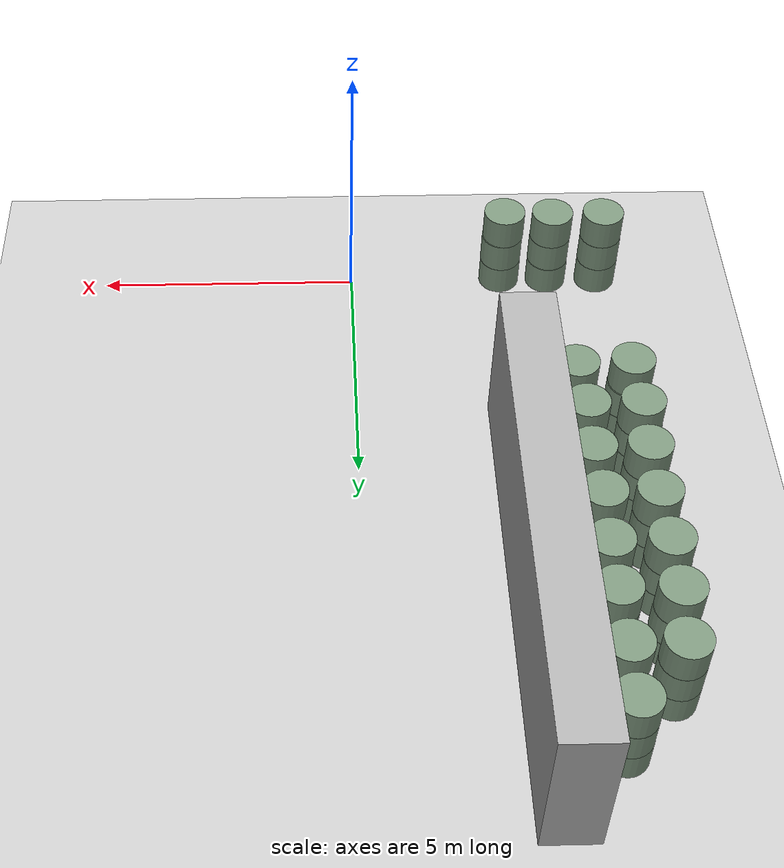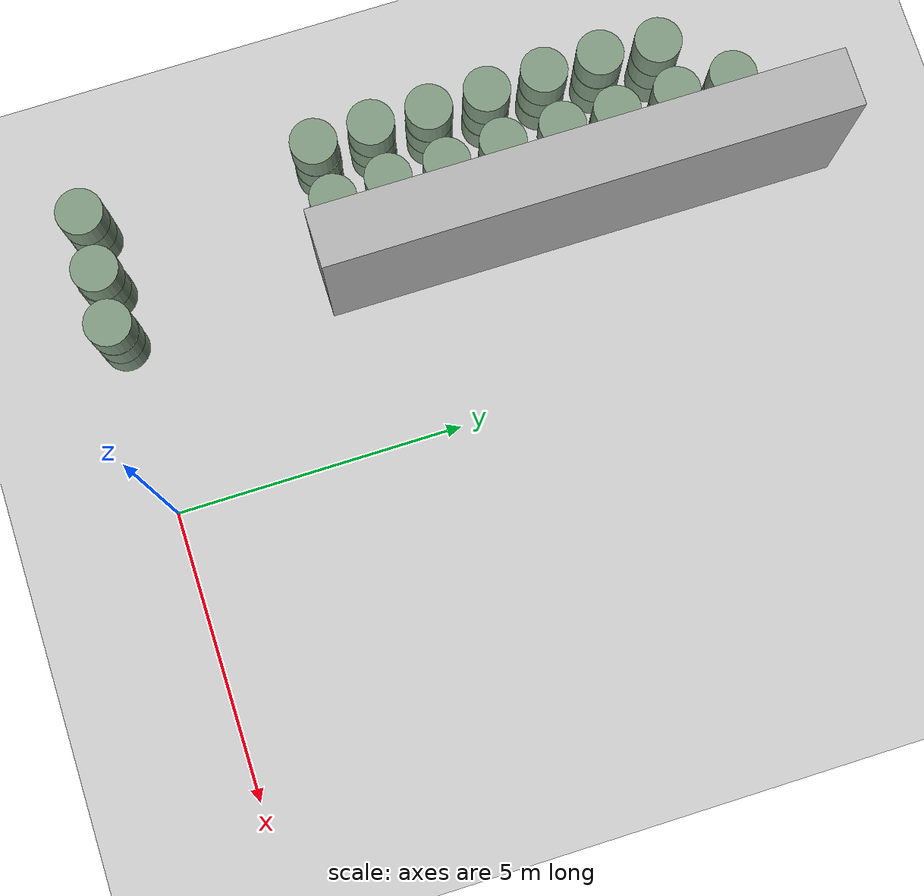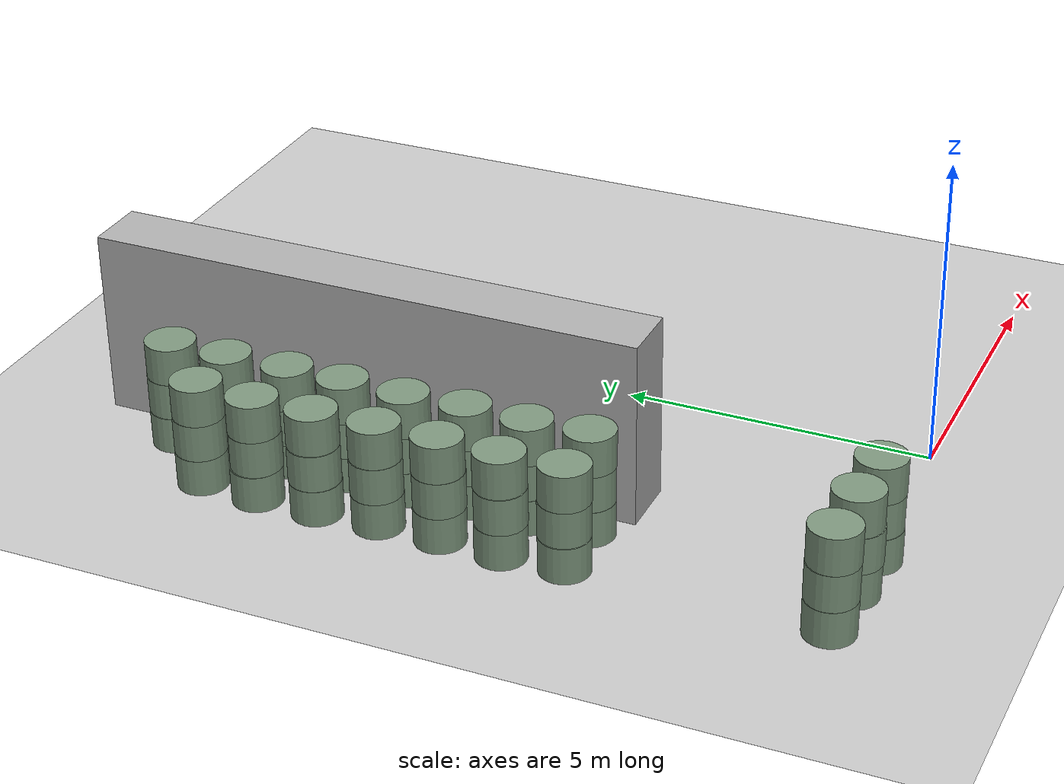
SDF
<sdf version="1.6">
 <world name="default">
  <include><uri>model://ground_plane</uri></include>
  <model name="wall_3">
   <pose>-3.0 8.0 1.5 0 -0 0</pose>
   <static>True</static>
   <link name="link">
    <inertial>
     <mass>100</mass>
     <inertia>
      <ixx>0.166667</ixx>
      <ixy>0</ixy>
      <ixz>0</ixz>
      <iyy>0.166667</iyy>
      <iyz>0</iyz>
      <izz>0.166667</izz>
     </inertia>
    </inertial>
    <collision name="collision"><geometry><box><size>1.0 9.0 3.0</size></box></geometry></collision>
    <visual name="visual">
     <geometry><box><size>1.0 9.0 3.0</size></box></geometry>
     <material><ambient>0.7 0.7 0.7 1</ambient><diffuse>0.7 0.7 0.7 1</diffuse></material>
    </visual>
   </link>
  </model>
  <model name="unit_cylinder_65">
   <pose>-4.96735528969 0.0021140604384 0.3 0 -0 0</pose>
   <static>True</static>
   <link name="link">
    <inertial>
     <mass>100</mass>
     <inertia><ixx>0.145833</ixx><ixy>0</ixy><ixz>0</ixz><iyy>0.145833</iyy><iyz>0</iyz><izz>0.125</izz></inertia>
    </inertial>
    <collision name="collision">
     <geometry><cylinder><radius>0.4</radius><length>0.6</length></cylinder></geometry>
     <max_contacts>100</max_contacts>
    </collision>
    <visual name="visual">
     <geometry><cylinder><radius>0.4</radius><length>0.6</length></cylinder></geometry>
     <material><ambient>0.5 0.6 0.5 1</ambient><diffuse>0.5 0.6 0.5 1</diffuse></material>
    </visual>
   </link>
  </model>
  <model name="unit_cylinder_66">
   <pose>-4.96388893308 0.00316919549557 0.9 0 -0 0</pose>
   <static>True</static>
   <link name="link">
    <inertial>
     <mass>100</mass>
     <inertia><ixx>0.145833</ixx><ixy>0</ixy><ixz>0</ixz><iyy>0.145833</iyy><iyz>0</iyz><izz>0.125</izz></inertia>
    </inertial>
    <collision name="collision">
     <geometry><cylinder><radius>0.4</radius><length>0.6</length></cylinder></geometry>
     <max_contacts>100</max_contacts>
    </collision>
    <visual name="visual">
     <geometry><cylinder><radius>0.4</radius><length>0.6</length></cylinder></geometry>
     <material><ambient>0.5 0.6 0.5 1</ambient><diffuse>0.5 0.6 0.5 1</diffuse></material>
    </visual>
   </link>
  </model>
  <model name="unit_cylinder_67">
   <pose>-4.95941871918 -0.00279619304965 1.5 0 -0 0</pose>
   <static>True</static>
   <link name="link">
    <inertial>
     <mass>100</mass>
     <inertia><ixx>0.145833</ixx><ixy>0</ixy><ixz>0</ixz><iyy>0.145833</iyy><iyz>0</iyz><izz>0.125</izz></inertia>
    </inertial>
    <collision name="collision">
     <geometry><cylinder><radius>0.4</radius><length>0.6</length></cylinder></geometry>
     <max_contacts>100</max_contacts>
    </collision>
    <visual name="visual">
     <geometry><cylinder><radius>0.4</radius><length>0.6</length></cylinder></geometry>
     <material><ambient>0.5 0.6 0.5 1</ambient><diffuse>0.5 0.6 0.5 1</diffuse></material>
    </visual>
   </link>
  </model>
  <model name="unit_cylinder_68">
   <pose>-4.97665239249 4.00115435384 0.3 0 -0 0</pose>
   <static>True</static>
   <link name="link">
    <inertial>
     <mass>100</mass>
     <inertia><ixx>0.145833</ixx><ixy>0</ixy><ixz>0</ixz><iyy>0.145833</iyy><iyz>0</iyz><izz>0.125</izz></inertia>
    </inertial>
    <collision name="collision">
     <geometry><cylinder><radius>0.4</radius><length>0.6</length></cylinder></geometry>
     <max_contacts>100</max_contacts>
    </collision>
    <visual name="visual">
     <geometry><cylinder><radius>0.4</radius><length>0.6</length></cylinder></geometry>
     <material><ambient>0.5 0.6 0.5 1</ambient><diffuse>0.5 0.6 0.5 1</diffuse></material>
    </visual>
   </link>
  </model>
  <model name="unit_cylinder_69">
   <pose>-4.96123217518 4.01271607768 0.9 0 -0 0</pose>
   <static>True</static>
   <link name="link">
    <inertial>
     <mass>100</mass>
     <inertia><ixx>0.145833</ixx><ixy>0</ixy><ixz>0</ixz><iyy>0.145833</iyy><iyz>0</iyz><izz>0.125</izz></inertia>
    </inertial>
    <collision name="collision">
     <geometry><cylinder><radius>0.4</radius><length>0.6</length></cylinder></geometry>
     <max_contacts>100</max_contacts>
    </collision>
    <visual name="visual">
     <geometry><cylinder><radius>0.4</radius><length>0.6</length></cylinder></geometry>
     <material><ambient>0.5 0.6 0.5 1</ambient><diffuse>0.5 0.6 0.5 1</diffuse></material>
    </visual>
   </link>
  </model>
  <model name="unit_cylinder_70">
   <pose>-4.97257461751 3.99964357237 1.5 0 -0 0</pose>
   <static>True</static>
   <link name="link">
    <inertial>
     <mass>100</mass>
     <inertia><ixx>0.145833</ixx><ixy>0</ixy><ixz>0</ixz><iyy>0.145833</iyy><iyz>0</iyz><izz>0.125</izz></inertia>
    </inertial>
    <collision name="collision">
     <geometry><cylinder><radius>0.4</radius><length>0.6</length></cylinder></geometry>
     <max_contacts>100</max_contacts>
    </collision>
    <visual name="visual">
     <geometry><cylinder><radius>0.4</radius><length>0.6</length></cylinder></geometry>
     <material><ambient>0.5 0.6 0.5 1</ambient><diffuse>0.5 0.6 0.5 1</diffuse></material>
    </visual>
   </link>
  </model>
  <model name="unit_cylinder_71">
   <pose>-5.01684145792 4.99076180541 0.3 0 -0 0</pose>
   <static>True</static>
   <link name="link">
    <inertial>
     <mass>100</mass>
     <inertia><ixx>0.145833</ixx><ixy>0</ixy><ixz>0</ixz><iyy>0.145833</iyy><iyz>0</iyz><izz>0.125</izz></inertia>
    </inertial>
    <collision name="collision">
     <geometry><cylinder><radius>0.4</radius><length>0.6</length></cylinder></geometry>
     <max_contacts>100</max_contacts>
    </collision>
    <visual name="visual">
     <geometry><cylinder><radius>0.4</radius><length>0.6</length></cylinder></geometry>
     <material><ambient>0.5 0.6 0.5 1</ambient><diffuse>0.5 0.6 0.5 1</diffuse></material>
    </visual>
   </link>
  </model>
  <model name="unit_cylinder_72">
   <pose>-5.01776492797 4.98397670151 0.9 0 -0 0</pose>
   <static>True</static>
   <link name="link">
    <inertial>
     <mass>100</mass>
     <inertia><ixx>0.145833</ixx><ixy>0</ixy><ixz>0</ixz><iyy>0.145833</iyy><iyz>0</iyz><izz>0.125</izz></inertia>
    </inertial>
    <collision name="collision">
     <geometry><cylinder><radius>0.4</radius><length>0.6</length></cylinder></geometry>
     <max_contacts>100</max_contacts>
    </collision>
    <visual name="visual">
     <geometry><cylinder><radius>0.4</radius><length>0.6</length></cylinder></geometry>
     <material><ambient>0.5 0.6 0.5 1</ambient><diffuse>0.5 0.6 0.5 1</diffuse></material>
    </visual>
   </link>
  </model>
  <model name="unit_cylinder_73">
   <pose>-5.00644599023 4.99819325167 1.5 0 -0 0</pose>
   <static>True</static>
   <link name="link">
    <inertial>
     <mass>100</mass>
     <inertia><ixx>0.145833</ixx><ixy>0</ixy><ixz>0</ixz><iyy>0.145833</iyy><iyz>0</iyz><izz>0.125</izz></inertia>
    </inertial>
    <collision name="collision">
     <geometry><cylinder><radius>0.4</radius><length>0.6</length></cylinder></geometry>
     <max_contacts>100</max_contacts>
    </collision>
    <visual name="visual">
     <geometry><cylinder><radius>0.4</radius><length>0.6</length></cylinder></geometry>
     <material><ambient>0.5 0.6 0.5 1</ambient><diffuse>0.5 0.6 0.5 1</diffuse></material>
    </visual>
   </link>
  </model>
  <model name="unit_cylinder_74">
   <pose>-4.97988111141 5.99110220012 0.3 0 -0 0</pose>
   <static>True</static>
   <link name="link">
    <inertial>
     <mass>100</mass>
     <inertia><ixx>0.145833</ixx><ixy>0</ixy><ixz>0</ixz><iyy>0.145833</iyy><iyz>0</iyz><izz>0.125</izz></inertia>
    </inertial>
    <collision name="collision">
     <geometry><cylinder><radius>0.4</radius><length>0.6</length></cylinder></geometry>
     <max_contacts>100</max_contacts>
    </collision>
    <visual name="visual">
     <geometry><cylinder><radius>0.4</radius><length>0.6</length></cylinder></geometry>
     <material><ambient>0.5 0.6 0.5 1</ambient><diffuse>0.5 0.6 0.5 1</diffuse></material>
    </visual>
   </link>
  </model>
  <model name="unit_cylinder_75">
   <pose>-4.97790646693 5.98630708977 0.9 0 -0 0</pose>
   <static>True</static>
   <link name="link">
    <inertial>
     <mass>100</mass>
     <inertia><ixx>0.145833</ixx><ixy>0</ixy><ixz>0</ixz><iyy>0.145833</iyy><iyz>0</iyz><izz>0.125</izz></inertia>
    </inertial>
    <collision name="collision">
     <geometry><cylinder><radius>0.4</radius><length>0.6</length></cylinder></geometry>
     <max_contacts>100</max_contacts>
    </collision>
    <visual name="visual">
     <geometry><cylinder><radius>0.4</radius><length>0.6</length></cylinder></geometry>
     <material><ambient>0.5 0.6 0.5 1</ambient><diffuse>0.5 0.6 0.5 1</diffuse></material>
    </visual>
   </link>
  </model>
  <model name="unit_cylinder_76">
   <pose>-4.97747650032 5.99498811339 1.5 0 -0 0</pose>
   <static>True</static>
   <link name="link">
    <inertial>
     <mass>100</mass>
     <inertia><ixx>0.145833</ixx><ixy>0</ixy><ixz>0</ixz><iyy>0.145833</iyy><iyz>0</iyz><izz>0.125</izz></inertia>
    </inertial>
    <collision name="collision">
     <geometry><cylinder><radius>0.4</radius><length>0.6</length></cylinder></geometry>
     <max_contacts>100</max_contacts>
    </collision>
    <visual name="visual">
     <geometry><cylinder><radius>0.4</radius><length>0.6</length></cylinder></geometry>
     <material><ambient>0.5 0.6 0.5 1</ambient><diffuse>0.5 0.6 0.5 1</diffuse></material>
    </visual>
   </link>
  </model>
  <model name="unit_cylinder_77">
   <pose>-4.99007872937 6.99916679576 0.3 0 -0 0</pose>
   <static>True</static>
   <link name="link">
    <inertial>
     <mass>100</mass>
     <inertia><ixx>0.145833</ixx><ixy>0</ixy><ixz>0</ixz><iyy>0.145833</iyy><iyz>0</iyz><izz>0.125</izz></inertia>
    </inertial>
    <collision name="collision">
     <geometry><cylinder><radius>0.4</radius><length>0.6</length></cylinder></geometry>
     <max_contacts>100</max_contacts>
    </collision>
    <visual name="visual">
     <geometry><cylinder><radius>0.4</radius><length>0.6</length></cylinder></geometry>
     <material><ambient>0.5 0.6 0.5 1</ambient><diffuse>0.5 0.6 0.5 1</diffuse></material>
    </visual>
   </link>
  </model>
  <model name="unit_cylinder_78">
   <pose>-4.99468358126 7.00328295893 0.9 0 -0 0</pose>
   <static>True</static>
   <link name="link">
    <inertial>
     <mass>100</mass>
     <inertia><ixx>0.145833</ixx><ixy>0</ixy><ixz>0</ixz><iyy>0.145833</iyy><iyz>0</iyz><izz>0.125</izz></inertia>
    </inertial>
    <collision name="collision">
     <geometry><cylinder><radius>0.4</radius><length>0.6</length></cylinder></geometry>
     <max_contacts>100</max_contacts>
    </collision>
    <visual name="visual">
     <geometry><cylinder><radius>0.4</radius><length>0.6</length></cylinder></geometry>
     <material><ambient>0.5 0.6 0.5 1</ambient><diffuse>0.5 0.6 0.5 1</diffuse></material>
    </visual>
   </link>
  </model>
  <model name="unit_cylinder_79">
   <pose>-4.98581485361 7.00862531745 1.5 0 -0 0</pose>
   <static>True</static>
   <link name="link">
    <inertial>
     <mass>100</mass>
     <inertia><ixx>0.145833</ixx><ixy>0</ixy><ixz>0</ixz><iyy>0.145833</iyy><iyz>0</iyz><izz>0.125</izz></inertia>
    </inertial>
    <collision name="collision">
     <geometry><cylinder><radius>0.4</radius><length>0.6</length></cylinder></geometry>
     <max_contacts>100</max_contacts>
    </collision>
    <visual name="visual">
     <geometry><cylinder><radius>0.4</radius><length>0.6</length></cylinder></geometry>
     <material><ambient>0.5 0.6 0.5 1</ambient><diffuse>0.5 0.6 0.5 1</diffuse></material>
    </visual>
   </link>
  </model>
  <model name="unit_cylinder_80">
   <pose>-5.03895302583 8.00003435356 0.3 0 -0 0</pose>
   <static>True</static>
   <link name="link">
    <inertial>
     <mass>100</mass>
     <inertia><ixx>0.145833</ixx><ixy>0</ixy><ixz>0</ixz><iyy>0.145833</iyy><iyz>0</iyz><izz>0.125</izz></inertia>
    </inertial>
    <collision name="collision">
     <geometry><cylinder><radius>0.4</radius><length>0.6</length></cylinder></geometry>
     <max_contacts>100</max_contacts>
    </collision>
    <visual name="visual">
     <geometry><cylinder><radius>0.4</radius><length>0.6</length></cylinder></geometry>
     <material><ambient>0.5 0.6 0.5 1</ambient><diffuse>0.5 0.6 0.5 1</diffuse></material>
    </visual>
   </link>
  </model>
  <model name="unit_cylinder_81">
   <pose>-5.03508112863 8.01048629167 0.9 0 -0 0</pose>
   <static>True</static>
   <link name="link">
    <inertial>
     <mass>100</mass>
     <inertia><ixx>0.145833</ixx><ixy>0</ixy><ixz>0</ixz><iyy>0.145833</iyy><iyz>0</iyz><izz>0.125</izz></inertia>
    </inertial>
    <collision name="collision">
     <geometry><cylinder><radius>0.4</radius><length>0.6</length></cylinder></geometry>
     <max_contacts>100</max_contacts>
    </collision>
    <visual name="visual">
     <geometry><cylinder><radius>0.4</radius><length>0.6</length></cylinder></geometry>
     <material><ambient>0.5 0.6 0.5 1</ambient><diffuse>0.5 0.6 0.5 1</diffuse></material>
    </visual>
   </link>
  </model>
  <model name="unit_cylinder_82">
   <pose>-5.02244157855 8.01714980772 1.5 0 -0 0</pose>
   <static>True</static>
   <link name="link">
    <inertial>
     <mass>100</mass>
     <inertia><ixx>0.145833</ixx><ixy>0</ixy><ixz>0</ixz><iyy>0.145833</iyy><iyz>0</iyz><izz>0.125</izz></inertia>
    </inertial>
    <collision name="collision">
     <geometry><cylinder><radius>0.4</radius><length>0.6</length></cylinder></geometry>
     <max_contacts>100</max_contacts>
    </collision>
    <visual name="visual">
     <geometry><cylinder><radius>0.4</radius><length>0.6</length></cylinder></geometry>
     <material><ambient>0.5 0.6 0.5 1</ambient><diffuse>0.5 0.6 0.5 1</diffuse></material>
    </visual>
   </link>
  </model>
  <model name="unit_cylinder_83">
   <pose>-5.04258567234 9.00417437093 0.3 0 -0 0</pose>
   <static>True</static>
   <link name="link">
    <inertial>
     <mass>100</mass>
     <inertia><ixx>0.145833</ixx><ixy>0</ixy><ixz>0</ixz><iyy>0.145833</iyy><iyz>0</iyz><izz>0.125</izz></inertia>
    </inertial>
    <collision name="collision">
     <geometry><cylinder><radius>0.4</radius><length>0.6</length></cylinder></geometry>
     <max_contacts>100</max_contacts>
    </collision>
    <visual name="visual">
     <geometry><cylinder><radius>0.4</radius><length>0.6</length></cylinder></geometry>
     <material><ambient>0.5 0.6 0.5 1</ambient><diffuse>0.5 0.6 0.5 1</diffuse></material>
    </visual>
   </link>
  </model>
  <model name="unit_cylinder_84">
   <pose>-5.02820156402 8.99670966676 0.9 0 -0 0</pose>
   <static>True</static>
   <link name="link">
    <inertial>
     <mass>100</mass>
     <inertia><ixx>0.145833</ixx><ixy>0</ixy><ixz>0</ixz><iyy>0.145833</iyy><iyz>0</iyz><izz>0.125</izz></inertia>
    </inertial>
    <collision name="collision">
     <geometry><cylinder><radius>0.4</radius><length>0.6</length></cylinder></geometry>
     <max_contacts>100</max_contacts>
    </collision>
    <visual name="visual">
     <geometry><cylinder><radius>0.4</radius><length>0.6</length></cylinder></geometry>
     <material><ambient>0.5 0.6 0.5 1</ambient><diffuse>0.5 0.6 0.5 1</diffuse></material>
    </visual>
   </link>
  </model>
  <model name="unit_cylinder_85">
   <pose>-5.03328325137 9.00127237318 1.5 0 -0 0</pose>
   <static>True</static>
   <link name="link">
    <inertial>
     <mass>100</mass>
     <inertia><ixx>0.145833</ixx><ixy>0</ixy><ixz>0</ixz><iyy>0.145833</iyy><iyz>0</iyz><izz>0.125</izz></inertia>
    </inertial>
    <collision name="collision">
     <geometry><cylinder><radius>0.4</radius><length>0.6</length></cylinder></geometry>
     <max_contacts>100</max_contacts>
    </collision>
    <visual name="visual">
     <geometry><cylinder><radius>0.4</radius><length>0.6</length></cylinder></geometry>
     <material><ambient>0.5 0.6 0.5 1</ambient><diffuse>0.5 0.6 0.5 1</diffuse></material>
    </visual>
   </link>
  </model>
  <model name="unit_cylinder_86">
   <pose>-4.95789149822 9.99998866019 0.3 0 -0 0</pose>
   <static>True</static>
   <link name="link">
    <inertial>
     <mass>100</mass>
     <inertia><ixx>0.145833</ixx><ixy>0</ixy><ixz>0</ixz><iyy>0.145833</iyy><iyz>0</iyz><izz>0.125</izz></inertia>
    </inertial>
    <collision name="collision">
     <geometry><cylinder><radius>0.4</radius><length>0.6</length></cylinder></geometry>
     <max_contacts>100</max_contacts>
    </collision>
    <visual name="visual">
     <geometry><cylinder><radius>0.4</radius><length>0.6</length></cylinder></geometry>
     <material><ambient>0.5 0.6 0.5 1</ambient><diffuse>0.5 0.6 0.5 1</diffuse></material>
    </visual>
   </link>
  </model>
  <model name="unit_cylinder_87">
   <pose>-4.95550819153 9.99922210261 0.9 0 -0 0</pose>
   <static>True</static>
   <link name="link">
    <inertial>
     <mass>100</mass>
     <inertia><ixx>0.145833</ixx><ixy>0</ixy><ixz>0</ixz><iyy>0.145833</iyy><iyz>0</iyz><izz>0.125</izz></inertia>
    </inertial>
    <collision name="collision">
     <geometry><cylinder><radius>0.4</radius><length>0.6</length></cylinder></geometry>
     <max_contacts>100</max_contacts>
    </collision>
    <visual name="visual">
     <geometry><cylinder><radius>0.4</radius><length>0.6</length></cylinder></geometry>
     <material><ambient>0.5 0.6 0.5 1</ambient><diffuse>0.5 0.6 0.5 1</diffuse></material>
    </visual>
   </link>
  </model>
  <model name="unit_cylinder_88">
   <pose>-4.9542023309 9.99643986957 1.5 0 -0 0</pose>
   <static>True</static>
   <link name="link">
    <inertial>
     <mass>100</mass>
     <inertia><ixx>0.145833</ixx><ixy>0</ixy><ixz>0</ixz><iyy>0.145833</iyy><iyz>0</iyz><izz>0.125</izz></inertia>
    </inertial>
    <collision name="collision">
     <geometry><cylinder><radius>0.4</radius><length>0.6</length></cylinder></geometry>
     <max_contacts>100</max_contacts>
    </collision>
    <visual name="visual">
     <geometry><cylinder><radius>0.4</radius><length>0.6</length></cylinder></geometry>
     <material><ambient>0.5 0.6 0.5 1</ambient><diffuse>0.5 0.6 0.5 1</diffuse></material>
    </visual>
   </link>
  </model>
  <model name="unit_cylinder_111">
   <pose>-3.95936437391 -0.0170742061133 0.3 0 -0 0</pose>
   <static>True</static>
   <link name="link">
    <inertial>
     <mass>100</mass>
     <inertia><ixx>0.145833</ixx><ixy>0</ixy><ixz>0</ixz><iyy>0.145833</iyy><iyz>0</iyz><izz>0.125</izz></inertia>
    </inertial>
    <collision name="collision">
     <geometry><cylinder><radius>0.4</radius><length>0.6</length></cylinder></geometry>
     <max_contacts>100</max_contacts>
    </collision>
    <visual name="visual">
     <geometry><cylinder><radius>0.4</radius><length>0.6</length></cylinder></geometry>
     <material><ambient>0.5 0.6 0.5 1</ambient><diffuse>0.5 0.6 0.5 1</diffuse></material>
    </visual>
   </link>
  </model>
  <model name="unit_cylinder_112">
   <pose>-3.9565617313 -0.0327676005354 0.9 0 -0 0</pose>
   <static>True</static>
   <link name="link">
    <inertial>
     <mass>100</mass>
     <inertia><ixx>0.145833</ixx><ixy>0</ixy><ixz>0</ixz><iyy>0.145833</iyy><iyz>0</iyz><izz>0.125</izz></inertia>
    </inertial>
    <collision name="collision">
     <geometry><cylinder><radius>0.4</radius><length>0.6</length></cylinder></geometry>
     <max_contacts>100</max_contacts>
    </collision>
    <visual name="visual">
     <geometry><cylinder><radius>0.4</radius><length>0.6</length></cylinder></geometry>
     <material><ambient>0.5 0.6 0.5 1</ambient><diffuse>0.5 0.6 0.5 1</diffuse></material>
    </visual>
   </link>
  </model>
  <model name="unit_cylinder_113">
   <pose>-3.95821135689 -0.0164057703828 1.5 0 -0 0</pose>
   <static>True</static>
   <link name="link">
    <inertial>
     <mass>100</mass>
     <inertia><ixx>0.145833</ixx><ixy>0</ixy><ixz>0</ixz><iyy>0.145833</iyy><iyz>0</iyz><izz>0.125</izz></inertia>
    </inertial>
    <collision name="collision">
     <geometry><cylinder><radius>0.4</radius><length>0.6</length></cylinder></geometry>
     <max_contacts>100</max_contacts>
    </collision>
    <visual name="visual">
     <geometry><cylinder><radius>0.4</radius><length>0.6</length></cylinder></geometry>
     <material><ambient>0.5 0.6 0.5 1</ambient><diffuse>0.5 0.6 0.5 1</diffuse></material>
    </visual>
   </link>
  </model>
  <model name="unit_cylinder_114">
   <pose>-3.96576906701 4.04295643976 0.3 0 -0 0</pose>
   <static>True</static>
   <link name="link">
    <inertial>
     <mass>100</mass>
     <inertia><ixx>0.145833</ixx><ixy>0</ixy><ixz>0</ixz><iyy>0.145833</iyy><iyz>0</iyz><izz>0.125</izz></inertia>
    </inertial>
    <collision name="collision">
     <geometry><cylinder><radius>0.4</radius><length>0.6</length></cylinder></geometry>
     <max_contacts>100</max_contacts>
    </collision>
    <visual name="visual">
     <geometry><cylinder><radius>0.4</radius><length>0.6</length></cylinder></geometry>
     <material><ambient>0.5 0.6 0.5 1</ambient><diffuse>0.5 0.6 0.5 1</diffuse></material>
    </visual>
   </link>
  </model>
  <model name="unit_cylinder_115">
   <pose>-3.95856047173 4.04661416271 0.9 0 -0 0</pose>
   <static>True</static>
   <link name="link">
    <inertial>
     <mass>100</mass>
     <inertia><ixx>0.145833</ixx><ixy>0</ixy><ixz>0</ixz><iyy>0.145833</iyy><iyz>0</iyz><izz>0.125</izz></inertia>
    </inertial>
    <collision name="collision">
     <geometry><cylinder><radius>0.4</radius><length>0.6</length></cylinder></geometry>
     <max_contacts>100</max_contacts>
    </collision>
    <visual name="visual">
     <geometry><cylinder><radius>0.4</radius><length>0.6</length></cylinder></geometry>
     <material><ambient>0.5 0.6 0.5 1</ambient><diffuse>0.5 0.6 0.5 1</diffuse></material>
    </visual>
   </link>
  </model>
  <model name="unit_cylinder_116">
   <pose>-3.96115442458 4.03518691712 1.5 0 -0 0</pose>
   <static>True</static>
   <link name="link">
    <inertial>
     <mass>100</mass>
     <inertia><ixx>0.145833</ixx><ixy>0</ixy><ixz>0</ixz><iyy>0.145833</iyy><iyz>0</iyz><izz>0.125</izz></inertia>
    </inertial>
    <collision name="collision">
     <geometry><cylinder><radius>0.4</radius><length>0.6</length></cylinder></geometry>
     <max_contacts>100</max_contacts>
    </collision>
    <visual name="visual">
     <geometry><cylinder><radius>0.4</radius><length>0.6</length></cylinder></geometry>
     <material><ambient>0.5 0.6 0.5 1</ambient><diffuse>0.5 0.6 0.5 1</diffuse></material>
    </visual>
   </link>
  </model>
  <model name="unit_cylinder_117">
   <pose>-4.02570362553 4.99943115142 0.3 0 -0 0</pose>
   <static>True</static>
   <link name="link">
    <inertial>
     <mass>100</mass>
     <inertia><ixx>0.145833</ixx><ixy>0</ixy><ixz>0</ixz><iyy>0.145833</iyy><iyz>0</iyz><izz>0.125</izz></inertia>
    </inertial>
    <collision name="collision">
     <geometry><cylinder><radius>0.4</radius><length>0.6</length></cylinder></geometry>
     <max_contacts>100</max_contacts>
    </collision>
    <visual name="visual">
     <geometry><cylinder><radius>0.4</radius><length>0.6</length></cylinder></geometry>
     <material><ambient>0.5 0.6 0.5 1</ambient><diffuse>0.5 0.6 0.5 1</diffuse></material>
    </visual>
   </link>
  </model>
  <model name="unit_cylinder_118">
   <pose>-4.02160997285 5.00095880109 0.9 0 -0 0</pose>
   <static>True</static>
   <link name="link">
    <inertial>
     <mass>100</mass>
     <inertia><ixx>0.145833</ixx><ixy>0</ixy><ixz>0</ixz><iyy>0.145833</iyy><iyz>0</iyz><izz>0.125</izz></inertia>
    </inertial>
    <collision name="collision">
     <geometry><cylinder><radius>0.4</radius><length>0.6</length></cylinder></geometry>
     <max_contacts>100</max_contacts>
    </collision>
    <visual name="visual">
     <geometry><cylinder><radius>0.4</radius><length>0.6</length></cylinder></geometry>
     <material><ambient>0.5 0.6 0.5 1</ambient><diffuse>0.5 0.6 0.5 1</diffuse></material>
    </visual>
   </link>
  </model>
  <model name="unit_cylinder_119">
   <pose>-4.02992170362 5.00232830502 1.5 0 -0 0</pose>
   <static>True</static>
   <link name="link">
    <inertial>
     <mass>100</mass>
     <inertia><ixx>0.145833</ixx><ixy>0</ixy><ixz>0</ixz><iyy>0.145833</iyy><iyz>0</iyz><izz>0.125</izz></inertia>
    </inertial>
    <collision name="collision">
     <geometry><cylinder><radius>0.4</radius><length>0.6</length></cylinder></geometry>
     <max_contacts>100</max_contacts>
    </collision>
    <visual name="visual">
     <geometry><cylinder><radius>0.4</radius><length>0.6</length></cylinder></geometry>
     <material><ambient>0.5 0.6 0.5 1</ambient><diffuse>0.5 0.6 0.5 1</diffuse></material>
    </visual>
   </link>
  </model>
  <model name="unit_cylinder_120">
   <pose>-4.00047487541 6.01068582881 0.3 0 -0 0</pose>
   <static>True</static>
   <link name="link">
    <inertial>
     <mass>100</mass>
     <inertia><ixx>0.145833</ixx><ixy>0</ixy><ixz>0</ixz><iyy>0.145833</iyy><iyz>0</iyz><izz>0.125</izz></inertia>
    </inertial>
    <collision name="collision">
     <geometry><cylinder><radius>0.4</radius><length>0.6</length></cylinder></geometry>
     <max_contacts>100</max_contacts>
    </collision>
    <visual name="visual">
     <geometry><cylinder><radius>0.4</radius><length>0.6</length></cylinder></geometry>
     <material><ambient>0.5 0.6 0.5 1</ambient><diffuse>0.5 0.6 0.5 1</diffuse></material>
    </visual>
   </link>
  </model>
  <model name="unit_cylinder_121">
   <pose>-4.00944456028 6.0090641719 0.9 0 -0 0</pose>
   <static>True</static>
   <link name="link">
    <inertial>
     <mass>100</mass>
     <inertia><ixx>0.145833</ixx><ixy>0</ixy><ixz>0</ixz><iyy>0.145833</iyy><iyz>0</iyz><izz>0.125</izz></inertia>
    </inertial>
    <collision name="collision">
     <geometry><cylinder><radius>0.4</radius><length>0.6</length></cylinder></geometry>
     <max_contacts>100</max_contacts>
    </collision>
    <visual name="visual">
     <geometry><cylinder><radius>0.4</radius><length>0.6</length></cylinder></geometry>
     <material><ambient>0.5 0.6 0.5 1</ambient><diffuse>0.5 0.6 0.5 1</diffuse></material>
    </visual>
   </link>
  </model>
  <model name="unit_cylinder_122">
   <pose>-4.00508920353 6.00436585756 1.5 0 -0 0</pose>
   <static>True</static>
   <link name="link">
    <inertial>
     <mass>100</mass>
     <inertia><ixx>0.145833</ixx><ixy>0</ixy><ixz>0</ixz><iyy>0.145833</iyy><iyz>0</iyz><izz>0.125</izz></inertia>
    </inertial>
    <collision name="collision">
     <geometry><cylinder><radius>0.4</radius><length>0.6</length></cylinder></geometry>
     <max_contacts>100</max_contacts>
    </collision>
    <visual name="visual">
     <geometry><cylinder><radius>0.4</radius><length>0.6</length></cylinder></geometry>
     <material><ambient>0.5 0.6 0.5 1</ambient><diffuse>0.5 0.6 0.5 1</diffuse></material>
    </visual>
   </link>
  </model>
  <model name="unit_cylinder_123">
   <pose>-4.04710697605 6.98567371699 0.3 0 -0 0</pose>
   <static>True</static>
   <link name="link">
    <inertial>
     <mass>100</mass>
     <inertia><ixx>0.145833</ixx><ixy>0</ixy><ixz>0</ixz><iyy>0.145833</iyy><iyz>0</iyz><izz>0.125</izz></inertia>
    </inertial>
    <collision name="collision">
     <geometry><cylinder><radius>0.4</radius><length>0.6</length></cylinder></geometry>
     <max_contacts>100</max_contacts>
    </collision>
    <visual name="visual">
     <geometry><cylinder><radius>0.4</radius><length>0.6</length></cylinder></geometry>
     <material><ambient>0.5 0.6 0.5 1</ambient><diffuse>0.5 0.6 0.5 1</diffuse></material>
    </visual>
   </link>
  </model>
  <model name="unit_cylinder_124">
   <pose>-4.04894720168 6.99304346849 0.9 0 -0 0</pose>
   <static>True</static>
   <link name="link">
    <inertial>
     <mass>100</mass>
     <inertia><ixx>0.145833</ixx><ixy>0</ixy><ixz>0</ixz><iyy>0.145833</iyy><iyz>0</iyz><izz>0.125</izz></inertia>
    </inertial>
    <collision name="collision">
     <geometry><cylinder><radius>0.4</radius><length>0.6</length></cylinder></geometry>
     <max_contacts>100</max_contacts>
    </collision>
    <visual name="visual">
     <geometry><cylinder><radius>0.4</radius><length>0.6</length></cylinder></geometry>
     <material><ambient>0.5 0.6 0.5 1</ambient><diffuse>0.5 0.6 0.5 1</diffuse></material>
    </visual>
   </link>
  </model>
  <model name="unit_cylinder_125">
   <pose>-4.05571128934 6.99565644131 1.5 0 -0 0</pose>
   <static>True</static>
   <link name="link">
    <inertial>
     <mass>100</mass>
     <inertia><ixx>0.145833</ixx><ixy>0</ixy><ixz>0</ixz><iyy>0.145833</iyy><iyz>0</iyz><izz>0.125</izz></inertia>
    </inertial>
    <collision name="collision">
     <geometry><cylinder><radius>0.4</radius><length>0.6</length></cylinder></geometry>
     <max_contacts>100</max_contacts>
    </collision>
    <visual name="visual">
     <geometry><cylinder><radius>0.4</radius><length>0.6</length></cylinder></geometry>
     <material><ambient>0.5 0.6 0.5 1</ambient><diffuse>0.5 0.6 0.5 1</diffuse></material>
    </visual>
   </link>
  </model>
  <model name="unit_cylinder_126">
   <pose>-4.02394391326 8.03007216249 0.3 0 -0 0</pose>
   <static>True</static>
   <link name="link">
    <inertial>
     <mass>100</mass>
     <inertia><ixx>0.145833</ixx><ixy>0</ixy><ixz>0</ixz><iyy>0.145833</iyy><iyz>0</iyz><izz>0.125</izz></inertia>
    </inertial>
    <collision name="collision">
     <geometry><cylinder><radius>0.4</radius><length>0.6</length></cylinder></geometry>
     <max_contacts>100</max_contacts>
    </collision>
    <visual name="visual">
     <geometry><cylinder><radius>0.4</radius><length>0.6</length></cylinder></geometry>
     <material><ambient>0.5 0.6 0.5 1</ambient><diffuse>0.5 0.6 0.5 1</diffuse></material>
    </visual>
   </link>
  </model>
  <model name="unit_cylinder_127">
   <pose>-4.03803683744 8.03700145535 0.9 0 -0 0</pose>
   <static>True</static>
   <link name="link">
    <inertial>
     <mass>100</mass>
     <inertia><ixx>0.145833</ixx><ixy>0</ixy><ixz>0</ixz><iyy>0.145833</iyy><iyz>0</iyz><izz>0.125</izz></inertia>
    </inertial>
    <collision name="collision">
     <geometry><cylinder><radius>0.4</radius><length>0.6</length></cylinder></geometry>
     <max_contacts>100</max_contacts>
    </collision>
    <visual name="visual">
     <geometry><cylinder><radius>0.4</radius><length>0.6</length></cylinder></geometry>
     <material><ambient>0.5 0.6 0.5 1</ambient><diffuse>0.5 0.6 0.5 1</diffuse></material>
    </visual>
   </link>
  </model>
  <model name="unit_cylinder_128">
   <pose>-4.0325760476 8.01999404522 1.5 0 -0 0</pose>
   <static>True</static>
   <link name="link">
    <inertial>
     <mass>100</mass>
     <inertia><ixx>0.145833</ixx><ixy>0</ixy><ixz>0</ixz><iyy>0.145833</iyy><iyz>0</iyz><izz>0.125</izz></inertia>
    </inertial>
    <collision name="collision">
     <geometry><cylinder><radius>0.4</radius><length>0.6</length></cylinder></geometry>
     <max_contacts>100</max_contacts>
    </collision>
    <visual name="visual">
     <geometry><cylinder><radius>0.4</radius><length>0.6</length></cylinder></geometry>
     <material><ambient>0.5 0.6 0.5 1</ambient><diffuse>0.5 0.6 0.5 1</diffuse></material>
    </visual>
   </link>
  </model>
  <model name="unit_cylinder_129">
   <pose>-4.01078404534 8.9635398803 0.3 0 -0 0</pose>
   <static>True</static>
   <link name="link">
    <inertial>
     <mass>100</mass>
     <inertia><ixx>0.145833</ixx><ixy>0</ixy><ixz>0</ixz><iyy>0.145833</iyy><iyz>0</iyz><izz>0.125</izz></inertia>
    </inertial>
    <collision name="collision">
     <geometry><cylinder><radius>0.4</radius><length>0.6</length></cylinder></geometry>
     <max_contacts>100</max_contacts>
    </collision>
    <visual name="visual">
     <geometry><cylinder><radius>0.4</radius><length>0.6</length></cylinder></geometry>
     <material><ambient>0.5 0.6 0.5 1</ambient><diffuse>0.5 0.6 0.5 1</diffuse></material>
    </visual>
   </link>
  </model>
  <model name="unit_cylinder_130">
   <pose>-4.02927685831 8.96116729087 0.9 0 -0 0</pose>
   <static>True</static>
   <link name="link">
    <inertial>
     <mass>100</mass>
     <inertia><ixx>0.145833</ixx><ixy>0</ixy><ixz>0</ixz><iyy>0.145833</iyy><iyz>0</iyz><izz>0.125</izz></inertia>
    </inertial>
    <collision name="collision">
     <geometry><cylinder><radius>0.4</radius><length>0.6</length></cylinder></geometry>
     <max_contacts>100</max_contacts>
    </collision>
    <visual name="visual">
     <geometry><cylinder><radius>0.4</radius><length>0.6</length></cylinder></geometry>
     <material><ambient>0.5 0.6 0.5 1</ambient><diffuse>0.5 0.6 0.5 1</diffuse></material>
    </visual>
   </link>
  </model>
  <model name="unit_cylinder_131">
   <pose>-4.0210202143 8.96643875688 1.5 0 -0 0</pose>
   <static>True</static>
   <link name="link">
    <inertial>
     <mass>100</mass>
     <inertia><ixx>0.145833</ixx><ixy>0</ixy><ixz>0</ixz><iyy>0.145833</iyy><iyz>0</iyz><izz>0.125</izz></inertia>
    </inertial>
    <collision name="collision">
     <geometry><cylinder><radius>0.4</radius><length>0.6</length></cylinder></geometry>
     <max_contacts>100</max_contacts>
    </collision>
    <visual name="visual">
     <geometry><cylinder><radius>0.4</radius><length>0.6</length></cylinder></geometry>
     <material><ambient>0.5 0.6 0.5 1</ambient><diffuse>0.5 0.6 0.5 1</diffuse></material>
    </visual>
   </link>
  </model>
  <model name="unit_cylinder_132">
   <pose>-4.04107998549 10.0270028068 0.3 0 -0 0</pose>
   <static>True</static>
   <link name="link">
    <inertial>
     <mass>100</mass>
     <inertia><ixx>0.145833</ixx><ixy>0</ixy><ixz>0</ixz><iyy>0.145833</iyy><iyz>0</iyz><izz>0.125</izz></inertia>
    </inertial>
    <collision name="collision">
     <geometry><cylinder><radius>0.4</radius><length>0.6</length></cylinder></geometry>
     <max_contacts>100</max_contacts>
    </collision>
    <visual name="visual">
     <geometry><cylinder><radius>0.4</radius><length>0.6</length></cylinder></geometry>
     <material><ambient>0.5 0.6 0.5 1</ambient><diffuse>0.5 0.6 0.5 1</diffuse></material>
    </visual>
   </link>
  </model>
  <model name="unit_cylinder_133">
   <pose>-4.02930097077 10.016694199 0.9 0 -0 0</pose>
   <static>True</static>
   <link name="link">
    <inertial>
     <mass>100</mass>
     <inertia><ixx>0.145833</ixx><ixy>0</ixy><ixz>0</ixz><iyy>0.145833</iyy><iyz>0</iyz><izz>0.125</izz></inertia>
    </inertial>
    <collision name="collision">
     <geometry><cylinder><radius>0.4</radius><length>0.6</length></cylinder></geometry>
     <max_contacts>100</max_contacts>
    </collision>
    <visual name="visual">
     <geometry><cylinder><radius>0.4</radius><length>0.6</length></cylinder></geometry>
     <material><ambient>0.5 0.6 0.5 1</ambient><diffuse>0.5 0.6 0.5 1</diffuse></material>
    </visual>
   </link>
  </model>
  <model name="unit_cylinder_134">
   <pose>-4.04071479146 10.014509434 1.5 0 -0 0</pose>
   <static>True</static>
   <link name="link">
    <inertial>
     <mass>100</mass>
     <inertia><ixx>0.145833</ixx><ixy>0</ixy><ixz>0</ixz><iyy>0.145833</iyy><iyz>0</iyz><izz>0.125</izz></inertia>
    </inertial>
    <collision name="collision">
     <geometry><cylinder><radius>0.4</radius><length>0.6</length></cylinder></geometry>
     <max_contacts>100</max_contacts>
    </collision>
    <visual name="visual">
     <geometry><cylinder><radius>0.4</radius><length>0.6</length></cylinder></geometry>
     <material><ambient>0.5 0.6 0.5 1</ambient><diffuse>0.5 0.6 0.5 1</diffuse></material>
    </visual>
   </link>
  </model>
  <model name="unit_cylinder_135">
   <pose>-4.04131548845 10.9942160826 0.3 0 -0 0</pose>
   <static>True</static>
   <link name="link">
    <inertial>
     <mass>100</mass>
     <inertia><ixx>0.145833</ixx><ixy>0</ixy><ixz>0</ixz><iyy>0.145833</iyy><iyz>0</iyz><izz>0.125</izz></inertia>
    </inertial>
    <collision name="collision">
     <geometry><cylinder><radius>0.4</radius><length>0.6</length></cylinder></geometry>
     <max_contacts>100</max_contacts>
    </collision>
    <visual name="visual">
     <geometry><cylinder><radius>0.4</radius><length>0.6</length></cylinder></geometry>
     <material><ambient>0.5 0.6 0.5 1</ambient><diffuse>0.5 0.6 0.5 1</diffuse></material>
    </visual>
   </link>
  </model>
  <model name="unit_cylinder_136">
   <pose>-4.0323850021 10.9989336147 0.9 0 -0 0</pose>
   <static>True</static>
   <link name="link">
    <inertial>
     <mass>100</mass>
     <inertia><ixx>0.145833</ixx><ixy>0</ixy><ixz>0</ixz><iyy>0.145833</iyy><iyz>0</iyz><izz>0.125</izz></inertia>
    </inertial>
    <collision name="collision">
     <geometry><cylinder><radius>0.4</radius><length>0.6</length></cylinder></geometry>
     <max_contacts>100</max_contacts>
    </collision>
    <visual name="visual">
     <geometry><cylinder><radius>0.4</radius><length>0.6</length></cylinder></geometry>
     <material><ambient>0.5 0.6 0.5 1</ambient><diffuse>0.5 0.6 0.5 1</diffuse></material>
    </visual>
   </link>
  </model>
  <model name="unit_cylinder_137">
   <pose>-4.02966947851 10.9945752784 1.5 0 -0 0</pose>
   <static>True</static>
   <link name="link">
    <inertial>
     <mass>100</mass>
     <inertia><ixx>0.145833</ixx><ixy>0</ixy><ixz>0</ixz><iyy>0.145833</iyy><iyz>0</iyz><izz>0.125</izz></inertia>
    </inertial>
    <collision name="collision">
     <geometry><cylinder><radius>0.4</radius><length>0.6</length></cylinder></geometry>
     <max_contacts>100</max_contacts>
    </collision>
    <visual name="visual">
     <geometry><cylinder><radius>0.4</radius><length>0.6</length></cylinder></geometry>
     <material><ambient>0.5 0.6 0.5 1</ambient><diffuse>0.5 0.6 0.5 1</diffuse></material>
    </visual>
   </link>
  </model>
  <model name="unit_cylinder_153">
   <pose>-3.01068583188 -0.0510186596369 0.3 0 -0 0</pose>
   <static>True</static>
   <link name="link">
    <inertial>
     <mass>100</mass>
     <inertia><ixx>0.145833</ixx><ixy>0</ixy><ixz>0</ixz><iyy>0.145833</iyy><iyz>0</iyz><izz>0.125</izz></inertia>
    </inertial>
    <collision name="collision">
     <geometry><cylinder><radius>0.4</radius><length>0.6</length></cylinder></geometry>
     <max_contacts>100</max_contacts>
    </collision>
    <visual name="visual">
     <geometry><cylinder><radius>0.4</radius><length>0.6</length></cylinder></geometry>
     <material><ambient>0.5 0.6 0.5 1</ambient><diffuse>0.5 0.6 0.5 1</diffuse></material>
    </visual>
   </link>
  </model>
  <model name="unit_cylinder_154">
   <pose>-3.00543025457 -0.0419802549894 0.9 0 -0 0</pose>
   <static>True</static>
   <link name="link">
    <inertial>
     <mass>100</mass>
     <inertia><ixx>0.145833</ixx><ixy>0</ixy><ixz>0</ixz><iyy>0.145833</iyy><iyz>0</iyz><izz>0.125</izz></inertia>
    </inertial>
    <collision name="collision">
     <geometry><cylinder><radius>0.4</radius><length>0.6</length></cylinder></geometry>
     <max_contacts>100</max_contacts>
    </collision>
    <visual name="visual">
     <geometry><cylinder><radius>0.4</radius><length>0.6</length></cylinder></geometry>
     <material><ambient>0.5 0.6 0.5 1</ambient><diffuse>0.5 0.6 0.5 1</diffuse></material>
    </visual>
   </link>
  </model>
  <model name="unit_cylinder_155">
   <pose>-3.01644673581 -0.0527675235154 1.5 0 -0 0</pose>
   <static>True</static>
   <link name="link">
    <inertial>
     <mass>100</mass>
     <inertia><ixx>0.145833</ixx><ixy>0</ixy><ixz>0</ixz><iyy>0.145833</iyy><iyz>0</iyz><izz>0.125</izz></inertia>
    </inertial>
    <collision name="collision">
     <geometry><cylinder><radius>0.4</radius><length>0.6</length></cylinder></geometry>
     <max_contacts>100</max_contacts>
    </collision>
    <visual name="visual">
     <geometry><cylinder><radius>0.4</radius><length>0.6</length></cylinder></geometry>
     <material><ambient>0.5 0.6 0.5 1</ambient><diffuse>0.5 0.6 0.5 1</diffuse></material>
    </visual>
   </link>
  </model>
 </world>
</sdf>
